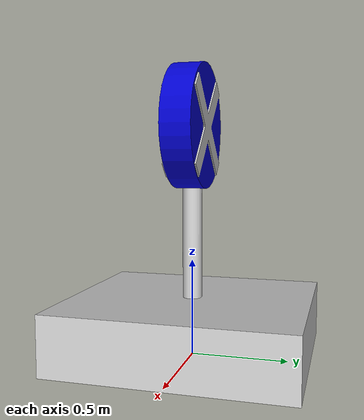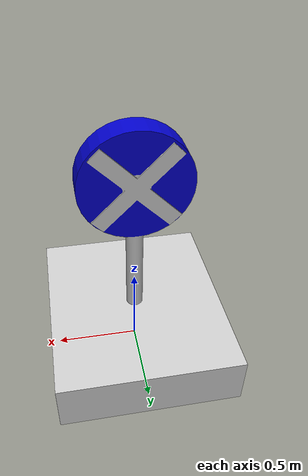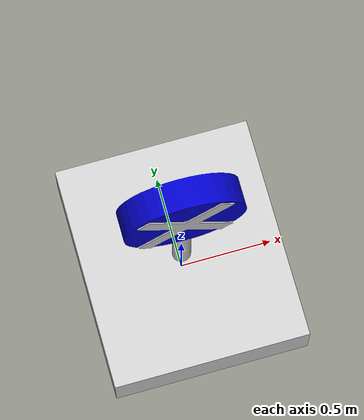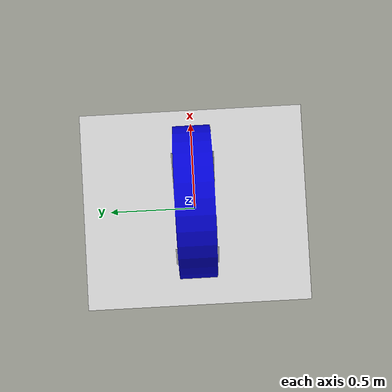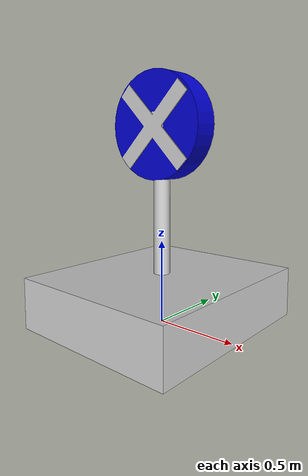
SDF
<?xml version="1.0" ?>
<sdf version="1.6">
  <model name="WaterBlast">
  <static>true </static>
    <link name="WaterBlastl">
      <pose>0 0 0 0 0 0</pose>
      <velocity_decay>
        <linear>0.001</linear>
        <angular>0.001</angular>
      </velocity_decay>
      <inertial>
        <pose>0 0 -10 0 0 0</pose>
        <mass>10</mass>
        <inertia>
          <ixx>10</ixx>
          <ixy>0</ixy>
          <ixz>0</ixz>
          <iyy>10</iyy>
          <iyz>0</iyz>
          <izz>10</izz>
        </inertia>
      </inertial>
      <collision name="WaterBlastc">
        <geometry>
	  <mesh><uri>model://WaterBlast/mesh/WaterBlast.dae</uri></mesh>
          <cylinder>
            <radius>0.25</radius>
            <length>1.0</length>
          </cylinder>
        </geometry>
      </collision>
      <visual name="WaterBlastv">
        <geometry>
	<mesh><uri>model://WaterBlast/mesh/WaterBlast.dae</uri></mesh>
        </geometry>
      </visual>
    </link>
  </model>
</sdf>
